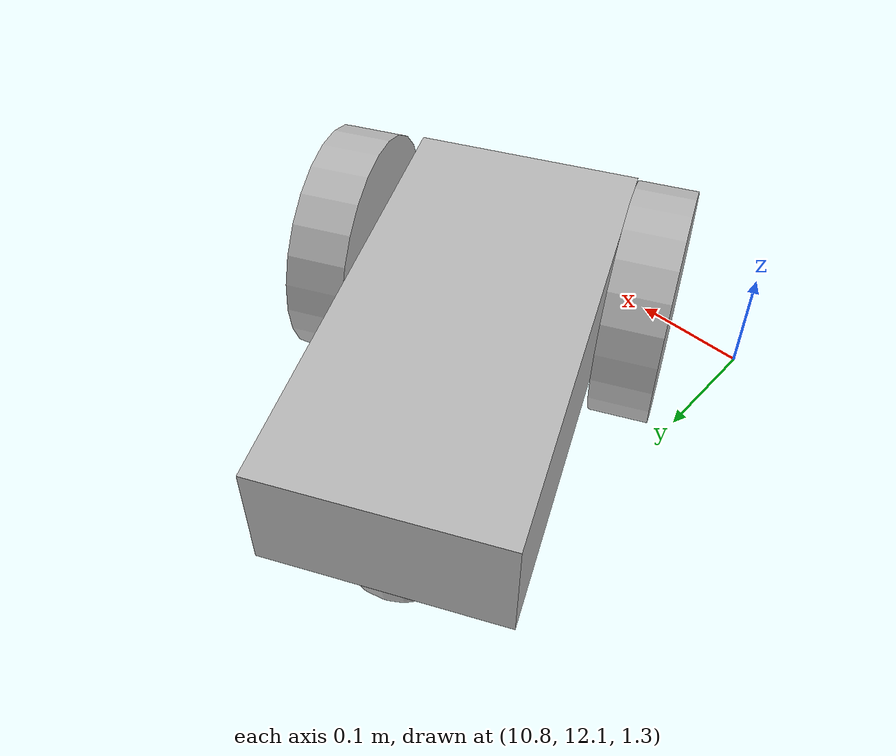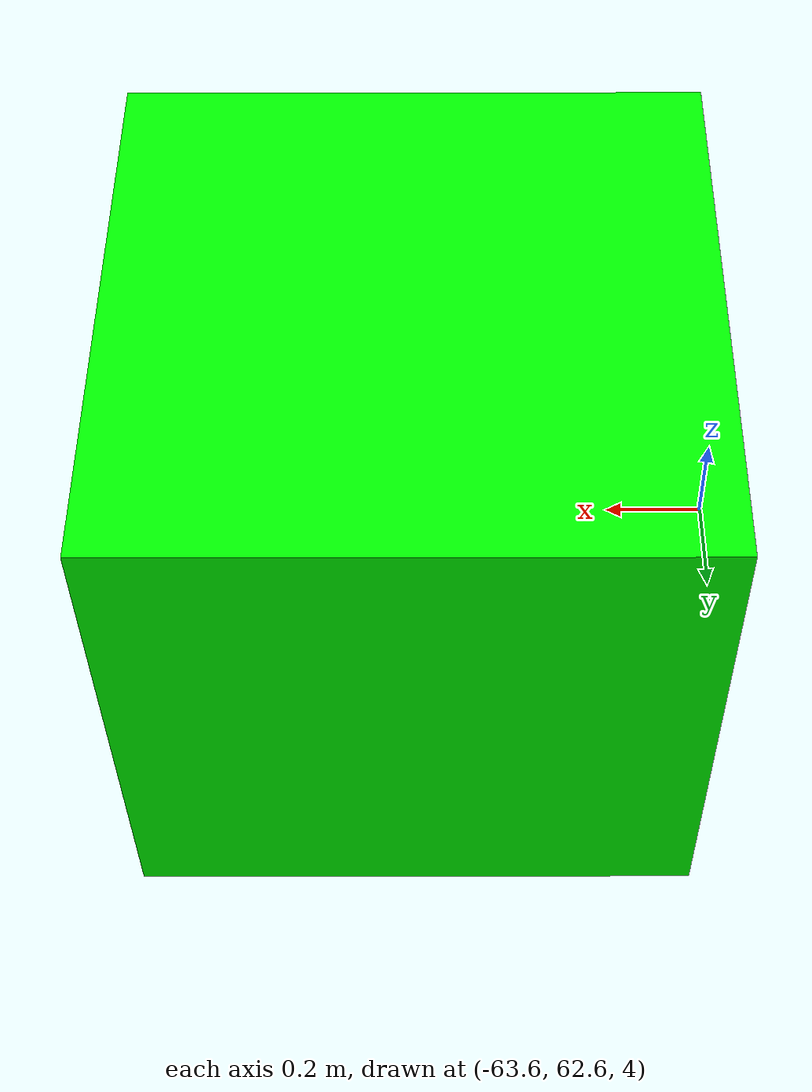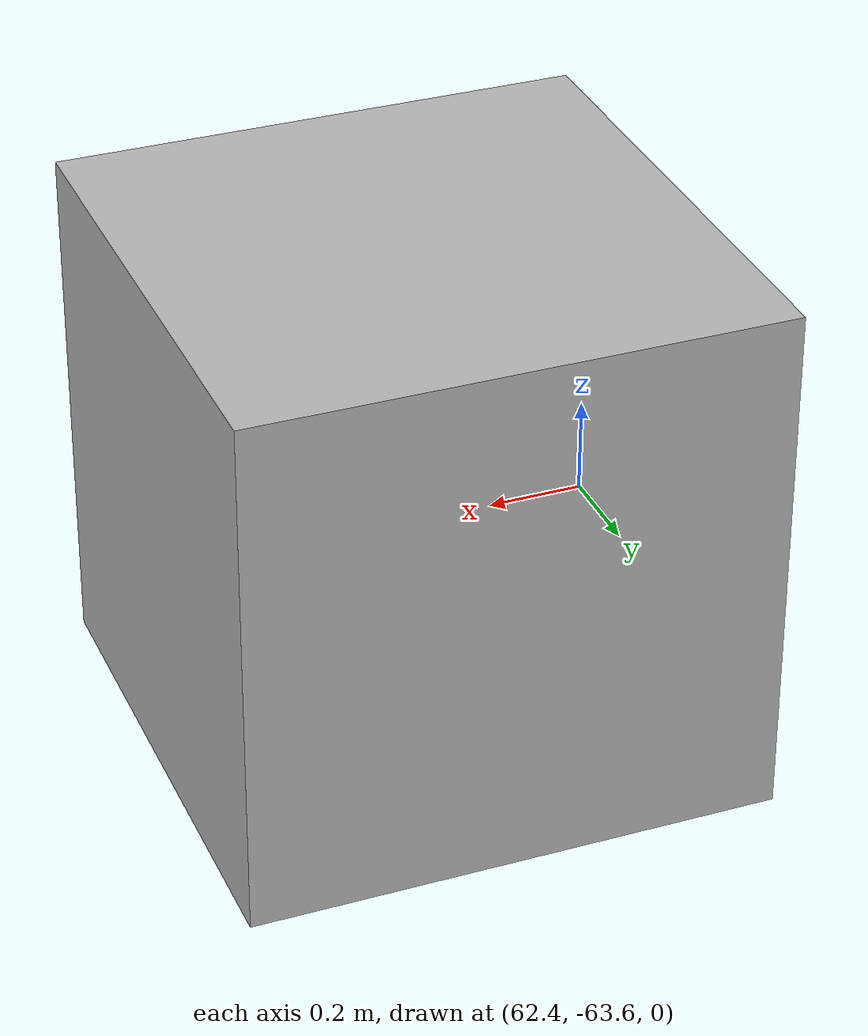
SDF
<sdf version="1.6">
 <world name="default">
  <scene><ambient>0.5 0.5 0.5 1</ambient><background>0.3 0.6 0.95 1</background><shadows>0</shadows></scene>
  <light name="sun" type="directional">
   <pose>0 0 10 0 -0 0</pose>
   <diffuse>0.8 0.8 0.8 1</diffuse>
   <specular>0.1 0.1 0.1 1</specular>
   <attenuation>
    <range>1000</range>
    <constant>0.9</constant>
    <linear>0.01</linear>
    <quadratic>0.001</quadratic>
   </attenuation>
   <direction>-0.5 0.5 -1</direction>
  </light>
  <model name="box2">
   <pose>-63 63.0223 4.55788 -0.038892 -0 -2e-06</pose>
   <link name="link">
    <collision name="collision"><geometry><box><size>1 1 1</size></box></geometry></collision>
    <visual name="visual">
     <geometry><box><size>1 1 1</size></box></geometry>
     <material><ambient>0 1 0 1</ambient><diffuse>0 1 0 1</diffuse></material>
    </visual>
    <inertial>
     <inertia><ixx>1</ixx><ixy>0</ixy><ixz>0</ixz><iyy>1</iyy><iyz>0</iyz><izz>1</izz></inertia>
     <mass>1</mass>
    </inertial>
   </link>
  </model>
  <model name="box3">
   <pose>63 63 0.5 -0 -0 -0</pose>
   <link name="link">
    <collision name="collision"><geometry><box><size>1 1 1</size></box></geometry></collision>
    <visual name="visual">
     <geometry><box><size>1 1 1</size></box></geometry>
     <material><ambient>0 0 1 1</ambient><diffuse>0 0 1 1</diffuse></material>
    </visual>
    <inertial>
     <inertia><ixx>1</ixx><ixy>0</ixy><ixz>0</ixz><iyy>1</iyy><iyz>0</iyz><izz>1</izz></inertia>
     <mass>1</mass>
    </inertial>
   </link>
  </model>
  <model name="box4">
   <pose>63 -63 0.5 0 -0 0</pose>
   <link name="link">
    <collision name="collision"><geometry><box><size>1 1 1</size></box></geometry></collision>
    <visual name="visual"><geometry><box><size>1 1 1</size></box></geometry></visual>
    <inertial>
     <inertia><ixx>1</ixx><ixy>0</ixy><ixz>0</ixz><iyy>1</iyy><iyz>0</iyz><izz>1</izz></inertia>
     <mass>1</mass>
    </inertial>
   </link>
  </model>
  <gravity>0 0 -9.8</gravity>
  <magnetic_field>6e-06 2.3e-05 -4.2e-05</magnetic_field>
  <atmosphere type="adiabatic"/>
  <physics name="default_physics" default="0" type="ode">
   <max_step_size>0.001</max_step_size>
   <real_time_factor>1</real_time_factor>
   <real_time_update_rate>1000</real_time_update_rate>
  </physics>
  <scene><ambient>0.4 0.4 0.4 1</ambient><background>0.7 0.7 0.7 1</background><shadows>1</shadows></scene>
  <spherical_coordinates>
   <surface_model>EARTH_WGS84</surface_model>
   <latitude_deg>0</latitude_deg>
   <longitude_deg>0</longitude_deg>
   <elevation>0</elevation>
   <heading_deg>0</heading_deg>
  </spherical_coordinates>
  <model name="my_robot">
   <static>0</static>
   <link name="chassis">
    <pose>0 0 0.1 0 -0 0</pose>
    <collision name="collision"><geometry><box><size>0.4 0.2 0.1</size></box></geometry></collision>
    <visual name="visual"><geometry><box><size>0.4 0.2 0.1</size></box></geometry></visual>
    <collision name="caster_collision">
     <pose>-0.15 0 -0.05 0 -0 0</pose>
     <geometry><sphere><radius>0.05</radius></sphere></geometry>
     <surface><friction><ode><mu>0</mu><mu2>0</mu2><slip1>1</slip1><slip2>1</slip2></ode></friction></surface>
    </collision>
    <visual name="caster_visual">
     <pose>-0.15 0 -0.05 0 -0 0</pose>
     <geometry><sphere><radius>0.05</radius></sphere></geometry>
    </visual>
    <inertial>
     <inertia><ixx>1</ixx><ixy>0</ixy><ixz>0</ixz><iyy>1</iyy><iyz>0</iyz><izz>1</izz></inertia>
     <mass>1</mass>
    </inertial>
   </link>
   <link name="left_wheel">
    <pose>0.1 0.13 0.1 -0 1.5707 1.5707</pose>
    <collision name="collision">
     <geometry><cylinder><radius>0.1</radius><length>0.05</length></cylinder></geometry>
    </collision>
    <visual name="visual">
     <geometry><cylinder><radius>0.1</radius><length>0.05</length></cylinder></geometry>
    </visual>
    <inertial>
     <inertia><ixx>1</ixx><ixy>0</ixy><ixz>0</ixz><iyy>1</iyy><iyz>0</iyz><izz>1</izz></inertia>
     <mass>1</mass>
    </inertial>
   </link>
   <link name="right_wheel">
    <pose>0.1 -0.13 0.1 -0 1.5707 1.5707</pose>
    <collision name="collision">
     <geometry><cylinder><radius>0.1</radius><length>0.05</length></cylinder></geometry>
    </collision>
    <visual name="visual">
     <geometry><cylinder><radius>0.1</radius><length>0.05</length></cylinder></geometry>
    </visual>
    <inertial>
     <inertia><ixx>1</ixx><ixy>0</ixy><ixz>0</ixz><iyy>1</iyy><iyz>0</iyz><izz>1</izz></inertia>
     <mass>1</mass>
    </inertial>
   </link>
   <joint name="left_wheel_hinge" type="revolute">
    <pose>0 0 -0.03 0 -0 0</pose>
    <child>left_wheel</child>
    <parent>chassis</parent>
    <axis>
     <xyz>0 1 0</xyz>
     <use_parent_model_frame>1</use_parent_model_frame>
     <limit><lower>-1e+16</lower><upper>1e+16</upper></limit>
     <dynamics><spring_reference>0</spring_reference><spring_stiffness>0</spring_stiffness></dynamics>
    </axis>
   </joint>
   <joint name="right_wheel_hinge" type="revolute">
    <pose>0 0 0.03 0 -0 0</pose>
    <child>right_wheel</child>
    <parent>chassis</parent>
    <axis>
     <xyz>0 1 0</xyz>
     <use_parent_model_frame>1</use_parent_model_frame>
     <limit><lower>-1e+16</lower><upper>1e+16</upper></limit>
     <dynamics><spring_reference>0</spring_reference><spring_stiffness>0</spring_stiffness></dynamics>
    </axis>
   </joint>
   <pose>10.9379 12.3241 1.29412 2.8e-05 7e-06 -1.14446</pose>
  </model>
 </world>
</sdf>
